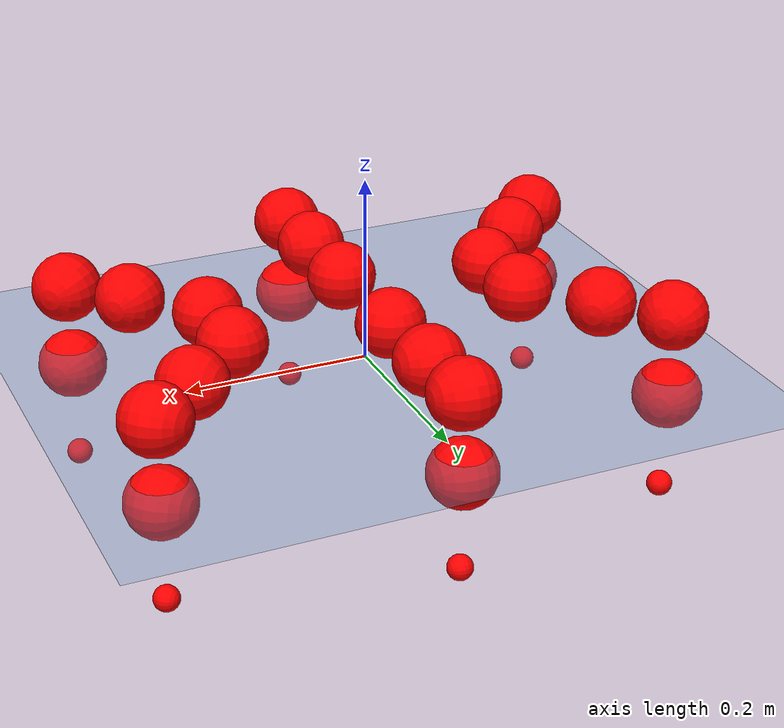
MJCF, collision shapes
<mujoco model="Golem">
  <compiler angle="radian" assetdir="assets" balanceinertia="true" inertiafromgeom="false"/>

  <option timestep="0.005" density="1.2" viscosity="2e-05"/>

  <size nkey="1"/>

  <visual>
    <quality shadowsize="8192"/>
    <map shadowclip="0.5"/>
  </visual>

  <default>
    <default class="/">
      <joint armature="0.01" damping="0.01" frictionloss="0.01"/>
      <geom contype="0" conaffinity="0" group="1" solref="-1000 -80"/>
      <site size="0.01 0.005 0.005" group="5"/>
      <general forcelimited="true" biastype="affine" gainprm="25" biasprm="0 -25 -0.5"/>
      <default class="visual">
        <geom type="mesh" group="2"/>
      </default>
      <default class="collision">
        <geom group="3"/>
      </default>
      <default class="foot">
        <geom size="0.01 0 0" condim="6" group="4" priority="1" solimp="0.015 1 0.01"/>
      </default>
      <default class="reward_collision_sphere">
        <geom group="5" rgba="1 0 0 1"/>
      </default>
    </default>
  </default>

  <asset>
    <texture type="skybox" colorspace="auto" name="//unnamed_texture_0" builtin="gradient" rgb1="0.95 0.95 0.95" rgb2="0.95 0.95 0.95" width="100" height="600"/>
    <texture type="2d" colorspace="auto" name="texplane" builtin="checker" rgb1="0.345 0.575 0.748" rgb2="0.345 0.575 0.748" markrgb="1 1 1" width="512" height="512"/>
    <material name="MatPlane" class="/" texture="texplane" texuniform="true" texrepeat="2 2" specular="0.9"/>
    <mesh name="body" class="/" file="body.stl" scale="0.001 0.001 0.001"/>
    <mesh name="coxa" class="/" file="coxa.stl" scale="0.001 0.001 0.001"/>
    <mesh name="femur" class="/" file="femur.stl" scale="0.001 0.001 0.001"/>
    <mesh name="tibia" class="/" file="tibia.stl" scale="0.001 0.001 0.001"/>
    <mesh name="tarsus" class="/" file="tarsus.stl" scale="0.001 0.001 0.001"/>
  </asset>

  <worldbody>
    <geom name="floor" class="/" size="100 100 0.125" type="plane" group="0" material="MatPlane"/>
    <light name="toplight_shadow" class="/" pos="0 0 5" dir="0.0990148 0.0990148 -0.990148" type="directional" ambient="0.04 0.04 0.04" diffuse="0.55 0.55 0.55" specular="0.12 0.12 0.12"/>
    <light name="toplight_fill" class="/" pos="0 0 5" dir="0.0990148 0.0990148 -0.990148" type="directional" castshadow="false" ambient="0.04 0.04 0.04" diffuse="0.3 0.3 0.3" specular="0.08 0.08 0.08"/>
    <body name="trunk" pos="0.000118154 -0.000826713 -0.000718265" quat="1 -5.1213e-06 4.07425e-06 5.82272e-06">
      <inertial pos="0.000842681 4.7087e-05 -0.00360235" quat="1 -0.000219505 -7.78088e-05 -5.20126e-05" mass="2.87887" diaginertia="0.0111849 0.00167304 0.0125648"/>
      <joint name="//unnamed_joint_0" type="free"/>
      <geom name="//unnamed_geom_1" class="/" pos="0 0 0.0670537" quat="1 0 0 0" type="mesh" rgba="0.9 0.9 0.9 1" mesh="body"/>
      <site name="imu" class="/" pos="0.131808 -0.00165256 0.106457" size="0.00923141"/>
      <camera name="track" class="/" pos="0 -1.40136 0" quat="0.707107 0.707107 0 0" mode="trackcom"/>
      <camera name="ego_camera" class="/" pos="0.132734 0 0.104771" quat="-0.5 -0.5 0.5 0.5"/>
      <body name="coxa_RR" pos="-0.181159 -0.0581255 0.0671286" quat="0.382662 -7.57073e-05 -0.000121982 -0.923888">
        <inertial pos="-0.000198873 -0.00033459 0.00103022" quat="0.999991 -0.0023336 0.00344601 -0.000135382" mass="0.157479" diaginertia="0.0112731 0.00171533 0.0128097"/>
        <joint name="coxa_joint_RR" class="/" pos="0 0 0" axis="0.00276815 -0.00200405 -0.999994" range="-3.13841 3.13567" armature="0.00943708" damping="0.00942781" frictionloss="0.00925554"/>
        <geom name="//unnamed_geom_2" class="/" type="mesh" rgba="0.2 0.2 0.2 1" mesh="coxa"/>
        <geom name="//unnamed_geom_3" class="reward_collision_sphere" size="0.0369256" pos="-0.0306309 0 0"/>
        <body name="femur_RR" pos="0.0610014 0.000627338 0.000288051" quat="0.499936 -0.50009 0.499962 0.500011">
          <inertial pos="0.00057216 3.37259e-05 -0.000236918" quat="0.999999 0.000460598 0.00134537 0.000287983" mass="0.157373" diaginertia="0.0111068 0.00169668 0.0127305"/>
          <joint name="femur_joint_RR" class="/" pos="0 0 0" axis="0.000761526 -0.00112017 -0.999999" range="-3.13198 3.15554" armature="0.00902543" damping="0.00160566" frictionloss="0.00898515"/>
          <geom name="//unnamed_geom_4" class="/" type="mesh" rgba="0.9 0.9 0.9 1" mesh="femur"/>
          <geom name="//unnamed_geom_5" class="reward_collision_sphere" size="0.0369256"/>
          <body name="tibia_RR" pos="0.00157988 -0.0764447 0.000895177" quat="3.46077e-05 1 -6.74092e-06 6.39e-06">
            <inertial pos="0.000444623 -0.000342437 0.000115328" quat="1 0.000123699 -0.000503756 5.30356e-05" mass="0.157595" diaginertia="0.0112419 0.0016977 0.0128935"/>
            <joint name="tibia_joint_RR" class="/" pos="0 0 0" axis="0.00195923 0.00205176 0.999996" range="-3.1471 3.12144" armature="0.00910452" damping="0" frictionloss="0.00924242"/>
            <geom name="//unnamed_geom_6" class="/" type="mesh" rgba="0.2 0.2 0.2 1" mesh="tibia"/>
            <geom name="//unnamed_geom_7" class="reward_collision_sphere" size="0.0369256"/>
            <body name="tarsus_RR" pos="0.0896433 0.000135097 -0.000685797" quat="1 3.67632e-06 -4.0203e-07 -1.34197e-05">
              <inertial pos="0.0622635 0.000695125 -0.00057133" quat="0.498252 0.500163 0.500095 0.501485" mass="0.158252" diaginertia="0.0111844 0.00168335 0.0126999"/>
              <joint name="tarsus_joint_RR" class="/" pos="0 0 0" axis="-0.00130345 0.00386672 0.999992" stiffness="0.00198933" range="-3.12936 3.12039" armature="0.00903909" damping="0.040404" frictionloss="0.00948238"/>
              <geom name="//unnamed_geom_8" class="/" type="mesh" rgba="0.9 0.9 0.9 1" mesh="tarsus"/>
              <geom name="foot_1" class="foot" size="0.00922931" pos="0.114355 0 0" quat="0 -0.707107 0 0.707107"/>
              <geom name="//unnamed_geom_10" class="reward_collision_sphere" size="0.0369256"/>
              <geom name="//unnamed_geom_11" class="reward_collision_sphere" size="0.0138471" pos="0.109761 0 0"/>
              <site name="foot_1" class="foot" pos="0.114355 0 0" quat="0 -0.707107 0 0.707107" size="0.00923141"/>
            </body>
          </body>
        </body>
      </body>
      <body name="coxa_RM" pos="2.33988e-05 -0.0929765 0.0678744" quat="0.707075 7.34529e-06 -0.000388241 -0.707139">
        <inertial pos="-0.000601211 0.000157389 0.000845683" quat="0.999998 0.00181458 0.000604646 0.0010536" mass="0.157814" diaginertia="0.0111769 0.0016812 0.0124709"/>
        <joint name="coxa_joint_RM" class="/" pos="0 0 0" axis="-0.000867865 -0.00225882 -0.999997" range="-3.13712 3.14416" armature="0.00921795" damping="0.0116459" frictionloss="0.0088906"/>
        <geom name="//unnamed_geom_12" class="/" type="mesh" rgba="0.2 0.2 0.2 1" mesh="coxa"/>
        <geom name="//unnamed_geom_13" class="reward_collision_sphere" size="0.0369256" pos="-0.0306309 0 0"/>
        <body name="femur_RM" pos="0.05984 -0.00113653 3.28009e-05" quat="0.500002 -0.499999 0.5 0.499999">
          <inertial pos="0.000465274 6.34761e-05 0.000121595" quat="1 0.000121346 0.000294828 0.000102599" mass="0.15829" diaginertia="0.0111552 0.00170969 0.0126873"/>
          <joint name="femur_joint_RM" class="/" pos="0 0 0" axis="-0.000920749 -0.00427827 -0.99999" range="-3.14493 3.13789" armature="0.00945776" damping="0.00809431" frictionloss="0.00921405"/>
          <geom name="//unnamed_geom_14" class="/" type="mesh" rgba="0.9 0.9 0.9 1" mesh="femur"/>
          <geom name="//unnamed_geom_15" class="reward_collision_sphere" size="0.0369256"/>
          <body name="tibia_RM" pos="-3.24282e-05 -0.0744053 -0.00035978" quat="2.57008e-07 1 2.93102e-07 -1.39612e-06">
            <inertial pos="-0.000789474 -0.000379466 -5.93407e-05" quat="0.999999 -0.000386059 -0.000847972 -0.000990225" mass="0.158063" diaginertia="0.0110693 0.00169783 0.0125876"/>
            <joint name="tibia_joint_RM" class="/" pos="0 0 0" axis="0.00201292 0.000631412 0.999998" range="-3.13428 3.15307" armature="0.0092564" damping="0.0107144" frictionloss="0.00945334"/>
            <geom name="//unnamed_geom_16" class="/" type="mesh" rgba="0.2 0.2 0.2 1" mesh="tibia"/>
            <geom name="//unnamed_geom_17" class="reward_collision_sphere" size="0.0369256"/>
            <body name="tarsus_RM" pos="0.0891855 -0.000285732 -0.000288062" quat="1 -3.31249e-05 -2.21237e-06 -6.74711e-05">
              <inertial pos="0.0618957 0.000622532 -0.000476347" quat="0.500153 0.5007 0.499031 0.500115" mass="0.157914" diaginertia="0.0111559 0.00170829 0.0127465"/>
              <joint name="tarsus_joint_RM" class="/" pos="0 0 0" axis="-0.00013304 0.000203221 1" range="-3.15645 3.13037" armature="0.00907342" damping="0.00765194" frictionloss="0.00919938"/>
              <geom name="//unnamed_geom_18" class="/" type="mesh" rgba="0.9 0.9 0.9 1" mesh="tarsus"/>
              <geom name="foot_2" class="foot" size="0.00942246" pos="0.114355 0 0" quat="0 -0.707107 0 0.707107"/>
              <geom name="//unnamed_geom_20" class="reward_collision_sphere" size="0.0369256"/>
              <geom name="//unnamed_geom_21" class="reward_collision_sphere" size="0.0138471" pos="0.109761 0 0"/>
              <site name="foot_2" class="foot" pos="0.114355 0 0" quat="0 -0.707107 0 0.707107" size="0.00923141"/>
            </body>
          </body>
        </body>
      </body>
      <body name="coxa_RF" pos="0.182285 -0.0583021 0.0675309" quat="0.923905 -4.15187e-05 -6.1355e-05 -0.382623">
        <inertial pos="-6.25857e-05 -0.000884847 -0.00019222" quat="1 0.000268001 -2.9061e-05 0.00014379" mass="0.157574" diaginertia="0.01112 0.00169243 0.0126914"/>
        <joint name="coxa_joint_RF" class="/" pos="0 0 0" axis="-0.000168407 0.000582464 -1" range="-3.13963 3.14765" armature="0.00899935" damping="0.013518" frictionloss="0.00909597"/>
        <geom name="//unnamed_geom_22" class="/" type="mesh" rgba="0.2 0.2 0.2 1" mesh="coxa"/>
        <geom name="//unnamed_geom_23" class="reward_collision_sphere" size="0.0369256" pos="-0.0306309 0 0"/>
        <body name="femur_RF" pos="0.0601298 -0.000721006 -0.000417945" quat="0.500013 -0.499875 0.50005 0.500063">
          <inertial pos="-7.8017e-05 0.000620219 -0.000131874" quat="0.999999 -0.000534486 0.00134839 0.000599413" mass="0.158247" diaginertia="0.0110963 0.00171768 0.0126875"/>
          <joint name="femur_joint_RF" class="/" pos="0 0 0" axis="0.000615104 0.000620871 -1" range="-3.14362 3.14318" armature="0.00945791" damping="0.00626893" frictionloss="0.00890519"/>
          <geom name="//unnamed_geom_24" class="/" type="mesh" rgba="0.9 0.9 0.9 1" mesh="femur"/>
          <geom name="//unnamed_geom_25" class="reward_collision_sphere" size="0.0369256"/>
          <body name="tibia_RF" pos="0.00026986 -0.0751836 0.000222983" quat="-4.2513e-06 1 -3.36612e-05 3.02379e-05">
            <inertial pos="-0.000397666 0.000458895 -0.000466037" quat="1 0.000178891 -0.000300601 3.23294e-05" mass="0.158049" diaginertia="0.011277 0.00168049 0.0126551"/>
            <joint name="tibia_joint_RF" class="/" pos="0 0 0" axis="0.000142888 5.64496e-05 1" range="-3.14794 3.13211" armature="0.00923011" damping="0.00853034" frictionloss="0.00924653"/>
            <geom name="//unnamed_geom_26" class="/" type="mesh" rgba="0.2 0.2 0.2 1" mesh="tibia"/>
            <geom name="//unnamed_geom_27" class="reward_collision_sphere" size="0.0369256"/>
            <body name="tarsus_RF" pos="0.0904515 -0.000242254 -0.000153665" quat="1 3.2752e-05 -5.96143e-05 3.23993e-05">
              <inertial pos="0.0604105 0.000596625 8.46096e-05" quat="0.499779 0.500165 0.500219 0.499836" mass="0.158014" diaginertia="0.0111597 0.0016814 0.0125104"/>
              <joint name="tarsus_joint_RF" class="/" pos="0 0 0" axis="-0.000513178 -0.000402884 1" stiffness="0.000968997" range="-3.13649 3.12878" armature="0.00883489" damping="0" frictionloss="0.00952333"/>
              <geom name="//unnamed_geom_28" class="/" type="mesh" rgba="0.9 0.9 0.9 1" mesh="tarsus"/>
              <geom name="foot_3" class="foot" size="0.00896499" pos="0.114355 0 0" quat="0 -0.707107 0 0.707107"/>
              <geom name="//unnamed_geom_30" class="reward_collision_sphere" size="0.0369256"/>
              <geom name="//unnamed_geom_31" class="reward_collision_sphere" size="0.0138471" pos="0.109761 0 0"/>
              <site name="foot_3" class="foot" pos="0.114355 0 0" quat="0 -0.707107 0 0.707107" size="0.00923141"/>
            </body>
          </body>
        </body>
      </body>
      <body name="coxa_LR" pos="-0.181235 0.060474 0.0676898" quat="0.382722 9.18338e-05 -9.60383e-05 0.923863">
        <inertial pos="0.000227155 -0.000768541 -6.49303e-05" quat="0.999999 -0.00130259 0.000147653 -0.000594615" mass="0.157406" diaginertia="0.0109933 0.00168585 0.0125313"/>
        <joint name="coxa_joint_LR" class="/" pos="0 0 0" axis="0.00251555 0.000682958 -0.999997" range="-3.14699 3.15174" armature="0.00960557" damping="0.00543179" frictionloss="0.00952687"/>
        <geom name="//unnamed_geom_32" class="/" type="mesh" rgba="0.2 0.2 0.2 1" mesh="coxa"/>
        <geom name="//unnamed_geom_33" class="reward_collision_sphere" size="0.0369256" pos="-0.0306309 0 0"/>
        <body name="femur_LR" pos="0.0605453 -0.00164304 -0.000153183" quat="0.499985 -0.49991 0.499982 0.500124">
          <inertial pos="1.69607e-05 -0.000429598 0.000205457" quat="0.999993 0.00106286 0.00168454 0.00322051" mass="0.15728" diaginertia="0.0111281 0.00167955 0.0126993"/>
          <joint name="femur_joint_LR" class="/" pos="0 0 0" axis="-0.00184185 -0.00216996 0.999996" range="-3.13266 3.14437" armature="0.00947791" damping="0.00299802" frictionloss="0.00902091"/>
          <geom name="//unnamed_geom_34" class="/" type="mesh" rgba="0.9 0.9 0.9 1" mesh="femur"/>
          <geom name="//unnamed_geom_35" class="reward_collision_sphere" size="0.0369256"/>
          <body name="tibia_LR" pos="0.00083875 -0.0767119 -0.00223494" quat="4.56973e-05 1 -1.01754e-05 1.80611e-05">
            <inertial pos="-0.000201456 3.52964e-05 -8.11896e-06" quat="0.999999 4.12191e-05 -0.000638163 -0.00111387" mass="0.156523" diaginertia="0.010983 0.00166838 0.012543"/>
            <joint name="tibia_joint_LR" class="/" pos="0 0 0" axis="0.00457096 0.000538396 -0.999989" range="-3.12585 3.1518" armature="0.0093539" damping="0.00386626" frictionloss="0.00909253"/>
            <geom name="//unnamed_geom_36" class="/" type="mesh" rgba="0.2 0.2 0.2 1" mesh="tibia"/>
            <geom name="//unnamed_geom_37" class="reward_collision_sphere" size="0.0369256"/>
            <body name="tarsus_LR" pos="0.090418 0.000658228 0.00116393" quat="1 4.50114e-05 5.19375e-05 3.32773e-05">
              <inertial pos="0.0620754 0.000342509 -0.000336087" quat="0.5002 0.500346 0.499768 0.499686" mass="0.159484" diaginertia="0.0111091 0.00171067 0.0127074"/>
              <joint name="tarsus_joint_LR" class="/" pos="0 0 0" axis="-0.00354187 -0.000930745 -0.999993" range="-3.1284 3.14813" armature="0.00912648" damping="0.004645" frictionloss="0.00926535"/>
              <geom name="//unnamed_geom_38" class="/" type="mesh" rgba="0.9 0.9 0.9 1" mesh="tarsus"/>
              <geom name="foot_4" class="foot" size="0.00873774" pos="0.114355 0 0" quat="0.707107 0 -0.707107 0"/>
              <geom name="//unnamed_geom_40" class="reward_collision_sphere" size="0.0369256"/>
              <geom name="//unnamed_geom_41" class="reward_collision_sphere" size="0.0138471" pos="0.109761 0 0"/>
              <site name="foot_4" class="foot" pos="0.114355 0 0" quat="0.707107 0 -0.707107 0" size="0.00923141"/>
            </body>
          </body>
        </body>
      </body>
      <body name="coxa_LM" pos="-0.00180521 0.0917967 0.0670111" quat="0.707054 8.86357e-05 4.08615e-05 0.70716">
        <inertial pos="0.000639948 -4.25503e-06 0.00012594" quat="0.999991 0.00358111 0.00144889 0.00196744" mass="0.157272" diaginertia="0.0111925 0.00168762 0.0126131"/>
        <joint name="coxa_joint_LM" class="/" pos="0 0 0" axis="0.000125368 8.58213e-05 -1" range="-3.14878 3.13287" armature="0.00899642" damping="0.0101784" frictionloss="0.00892844"/>
        <geom name="//unnamed_geom_42" class="/" type="mesh" rgba="0.2 0.2 0.2 1" mesh="coxa"/>
        <geom name="//unnamed_geom_43" class="reward_collision_sphere" size="0.0369256" pos="-0.0306309 0 0"/>
        <body name="femur_LM" pos="0.0576567 0.00171027 -0.00110431" quat="0.50027 -0.499856 0.500281 0.499594">
          <inertial pos="-0.000644988 0.000433059 0.0005538" quat="1 1.10581e-05 0.000108221 -0.00044181" mass="0.15815" diaginertia="0.0110598 0.00168268 0.0126814"/>
          <joint name="femur_joint_LM" class="/" pos="0 0 0" axis="-0.000904418 0.000855909 0.999999" range="-3.13859 3.15184" armature="0.00889233" damping="0.000257256" frictionloss="0.00916698"/>
          <geom name="//unnamed_geom_44" class="/" type="mesh" rgba="0.9 0.9 0.9 1" mesh="femur"/>
          <geom name="//unnamed_geom_45" class="reward_collision_sphere" size="0.0369256"/>
          <body name="tibia_LM" pos="0.000683173 -0.0731378 0.00139068" quat="-3.44461e-05 1 -0.000312467 2.297e-05">
            <inertial pos="0.000281081 -0.00112359 5.80892e-05" quat="0.999991 0.000304087 -0.00183031 -0.00391889" mass="0.157255" diaginertia="0.0111117 0.00168283 0.0126438"/>
            <joint name="tibia_joint_LM" class="/" pos="0 0 0" axis="0.00110563 -0.000153146 -0.999999" range="-3.13928 3.14504" armature="0.00915248" damping="0" frictionloss="0.00955881"/>
            <geom name="//unnamed_geom_46" class="/" type="mesh" rgba="0.2 0.2 0.2 1" mesh="tibia"/>
            <geom name="//unnamed_geom_47" class="reward_collision_sphere" size="0.0369256"/>
            <body name="tarsus_LM" pos="0.0885722 -0.000262335 -0.00180238" quat="1 -0.000192854 -4.67589e-05 -0.000223713">
              <inertial pos="0.0625509 -0.000381148 0.000531314" quat="0.5 0.5 0.5 0.5" mass="0.154684" diaginertia="0.011049 0.00166853 0.0124229"/>
              <joint name="tarsus_joint_LM" class="/" pos="0 0 0" axis="-0.000650855 -0.000355658 -1" range="-3.12901 3.1472" armature="0.00913023" damping="0" frictionloss="0.00914625"/>
              <geom name="//unnamed_geom_48" class="/" type="mesh" rgba="0.9 0.9 0.9 1" mesh="tarsus"/>
              <geom name="foot_5" class="foot" size="0.00923208" pos="0.114355 0 0" quat="0.707107 0 -0.707107 0"/>
              <geom name="//unnamed_geom_50" class="reward_collision_sphere" size="0.0369256"/>
              <geom name="//unnamed_geom_51" class="reward_collision_sphere" size="0.0138471" pos="0.109761 0 0"/>
              <site name="foot_5" class="foot" pos="0.114355 0 0" quat="0.707107 0 -0.707107 0" size="0.00923141"/>
            </body>
          </body>
        </body>
      </body>
      <body name="coxa_LF" pos="0.18224 0.0587512 0.0669838" quat="0.923899 0.000188908 -5.48222e-05 0.382637">
        <inertial pos="0.000211071 -0.000240553 0.0004228" quat="0.999991 0.0014669 0.00154251 0.00368172" mass="0.158464" diaginertia="0.0110292 0.00168546 0.0125735"/>
        <joint name="coxa_joint_LF" class="/" pos="0 0 0" axis="-0.00290399 0.00064502 -0.999996" range="-3.1297 3.14727" armature="0.00911758" damping="0.00158395" frictionloss="0.00963003"/>
        <geom name="//unnamed_geom_52" class="/" type="mesh" rgba="0.2 0.2 0.2 1" mesh="coxa"/>
        <geom name="//unnamed_geom_53" class="reward_collision_sphere" size="0.0369256" pos="-0.0306309 0 0"/>
        <body name="femur_LF" pos="0.0603244 0.000364054 -0.000517272" quat="0.499977 -0.499995 0.500047 0.499981">
          <inertial pos="0.000357271 7.58618e-05 -0.000342701" quat="0.999998 -0.0010279 0.00186359 -0.000386937" mass="0.155885" diaginertia="0.0110505 0.0016772 0.0127017"/>
          <joint name="femur_joint_LF" class="/" pos="0 0 0" axis="-0.000593081 -0.00153106 0.999999" range="-3.15673 3.14732" armature="0.00901007" damping="0" frictionloss="0.00901777"/>
          <geom name="//unnamed_geom_54" class="/" type="mesh" rgba="0.9 0.9 0.9 1" mesh="femur"/>
          <geom name="//unnamed_geom_55" class="reward_collision_sphere" size="0.0369256"/>
          <body name="tibia_LF" pos="0.00090419 -0.0759821 -0.000538458" quat="1.56017e-05 1 4.86849e-05 -2.8222e-06">
            <inertial pos="0.000107932 -0.000727778 -0.000321799" quat="0.999998 0.00168386 0.000694724 -0.000579546" mass="0.158375" diaginertia="0.0110519 0.00168331 0.0126447"/>
            <joint name="tibia_joint_LF" class="/" pos="0 0 0" axis="-0.00111238 -0.00255938 -0.999996" stiffness="0.000157319" range="-3.13896 3.13306" armature="0.00966813" damping="0.00417308" frictionloss="0.00893955"/>
            <geom name="//unnamed_geom_56" class="/" type="mesh" rgba="0.2 0.2 0.2 1" mesh="tibia"/>
            <geom name="//unnamed_geom_57" class="reward_collision_sphere" size="0.0369256"/>
            <body name="tarsus_LF" pos="0.0897301 8.21877e-05 -0.000376189" quat="1 6.05287e-06 5.61101e-06 8.7505e-06">
              <inertial pos="0.0624836 -2.27197e-05 0.000668714" quat="0.498348 0.497615 0.501878 0.502142" mass="0.156677" diaginertia="0.0111084 0.00168331 0.0125891"/>
              <joint name="tarsus_joint_LF" class="/" pos="0 0 0" axis="0.0046887 -0.00184275 -0.999987" stiffness="0.0293359" range="-3.12338 3.12626" armature="0.00924027" damping="0.0246825" frictionloss="0.0093707"/>
              <geom name="//unnamed_geom_58" class="/" type="mesh" rgba="0.9 0.9 0.9 1" mesh="tarsus"/>
              <geom name="foot_6" class="foot" size="0.00903072" pos="0.114355 0 0" quat="0.707107 0 -0.707107 0"/>
              <geom name="//unnamed_geom_60" class="reward_collision_sphere" size="0.0369256"/>
              <geom name="//unnamed_geom_61" class="reward_collision_sphere" size="0.0138471" pos="0.109761 0 0"/>
              <site name="foot_6" class="foot" pos="0.114355 0 0" quat="0.707107 0 -0.707107 0" size="0.00923141"/>
            </body>
          </body>
        </body>
      </body>
    </body>
  </worldbody>

  <contact>
    <pair class="/" geom1="floor" geom2="foot_1" name="//unnamed_contact_0"/>
    <pair class="/" geom1="floor" geom2="foot_2" name="//unnamed_contact_1"/>
    <pair class="/" geom1="floor" geom2="foot_3" name="//unnamed_contact_2"/>
    <pair class="/" geom1="floor" geom2="foot_4" name="//unnamed_contact_3"/>
    <pair class="/" geom1="floor" geom2="foot_5" name="//unnamed_contact_4"/>
    <pair class="/" geom1="floor" geom2="foot_6" name="//unnamed_contact_5"/>
  </contact>

  <actuator>
    <general name="coxa_joint_RR" class="/" joint="coxa_joint_RR" forcerange="-6.69443 6.69443" gainprm="22.2619" biasprm="0 -22.2619 -0.474077"/>
    <general name="femur_joint_RR" class="/" joint="femur_joint_RR" forcerange="-6.73367 6.73367" gainprm="22.2619" biasprm="0 -22.2619 -0.474077"/>
    <general name="tibia_joint_RR" class="/" joint="tibia_joint_RR" forcerange="-6.72041 6.72041" gainprm="22.2619" biasprm="0 -22.2619 -0.474077"/>
    <general name="tarsus_joint_RR" class="/" joint="tarsus_joint_RR" forcerange="-6.55201 6.55201" gainprm="22.2619" biasprm="0 -22.2619 -0.474077"/>
    <general name="coxa_joint_RM" class="/" joint="coxa_joint_RM" forcerange="-6.66858 6.66858" gainprm="22.2619" biasprm="0 -22.2619 -0.474077"/>
    <general name="femur_joint_RM" class="/" joint="femur_joint_RM" forcerange="-6.63025 6.63025" gainprm="22.2619" biasprm="0 -22.2619 -0.474077"/>
    <general name="tibia_joint_RM" class="/" joint="tibia_joint_RM" forcerange="-6.95697 6.95697" gainprm="22.2619" biasprm="0 -22.2619 -0.474077"/>
    <general name="tarsus_joint_RM" class="/" joint="tarsus_joint_RM" forcerange="-6.67956 6.67956" gainprm="22.2619" biasprm="0 -22.2619 -0.474077"/>
    <general name="coxa_joint_RF" class="/" joint="coxa_joint_RF" forcerange="-6.74174 6.74174" gainprm="22.2619" biasprm="0 -22.2619 -0.474077"/>
    <general name="femur_joint_RF" class="/" joint="femur_joint_RF" forcerange="-6.93178 6.93178" gainprm="22.2619" biasprm="0 -22.2619 -0.474077"/>
    <general name="tibia_joint_RF" class="/" joint="tibia_joint_RF" forcerange="-6.62105 6.62105" gainprm="22.2619" biasprm="0 -22.2619 -0.474077"/>
    <general name="tarsus_joint_RF" class="/" joint="tarsus_joint_RF" forcerange="-6.57009 6.57009" gainprm="22.2619" biasprm="0 -22.2619 -0.474077"/>
    <general name="coxa_joint_LR" class="/" joint="coxa_joint_LR" forcerange="-6.72599 6.72599" gainprm="22.2619" biasprm="0 -22.2619 -0.474077"/>
    <general name="femur_joint_LR" class="/" joint="femur_joint_LR" forcerange="-6.70991 6.70991" gainprm="22.2619" biasprm="0 -22.2619 -0.474077"/>
    <general name="tibia_joint_LR" class="/" joint="tibia_joint_LR" forcerange="-6.77345 6.77345" gainprm="22.2619" biasprm="0 -22.2619 -0.474077"/>
    <general name="tarsus_joint_LR" class="/" joint="tarsus_joint_LR" forcerange="-6.75601 6.75601" gainprm="22.2619" biasprm="0 -22.2619 -0.474077"/>
    <general name="coxa_joint_LM" class="/" joint="coxa_joint_LM" forcerange="-6.59858 6.59858" gainprm="22.2619" biasprm="0 -22.2619 -0.474077"/>
    <general name="femur_joint_LM" class="/" joint="femur_joint_LM" forcerange="-6.72711 6.72711" gainprm="22.2619" biasprm="0 -22.2619 -0.474077"/>
    <general name="tibia_joint_LM" class="/" joint="tibia_joint_LM" forcerange="-6.80985 6.80985" gainprm="22.2619" biasprm="0 -22.2619 -0.474077"/>
    <general name="tarsus_joint_LM" class="/" joint="tarsus_joint_LM" forcerange="-6.69946 6.69946" gainprm="22.2619" biasprm="0 -22.2619 -0.474077"/>
    <general name="coxa_joint_LF" class="/" joint="coxa_joint_LF" forcerange="-6.59118 6.59118" gainprm="22.2619" biasprm="0 -22.2619 -0.474077"/>
    <general name="femur_joint_LF" class="/" joint="femur_joint_LF" forcerange="-6.7896 6.7896" gainprm="22.2619" biasprm="0 -22.2619 -0.474077"/>
    <general name="tibia_joint_LF" class="/" joint="tibia_joint_LF" forcerange="-6.86059 6.86059" gainprm="22.2619" biasprm="0 -22.2619 -0.474077"/>
    <general name="tarsus_joint_LF" class="/" joint="tarsus_joint_LF" forcerange="-6.93189 6.93189" gainprm="22.2619" biasprm="0 -22.2619 -0.474077"/>
  </actuator>

  <sensor>
    <gyro site="imu" name="imu_angular_velocity"/>
    <velocimeter site="imu" name="imu_linear_velocity"/>
    <framelinvel objtype="site" objname="foot_1" name="foot_1_global_linear_velocity"/>
    <framelinvel objtype="site" objname="foot_2" name="foot_2_global_linear_velocity"/>
    <framelinvel objtype="site" objname="foot_3" name="foot_3_global_linear_velocity"/>
    <framelinvel objtype="site" objname="foot_4" name="foot_4_global_linear_velocity"/>
    <framelinvel objtype="site" objname="foot_5" name="foot_5_global_linear_velocity"/>
    <framelinvel objtype="site" objname="foot_6" name="foot_6_global_linear_velocity"/>
  </sensor>

  <keyframe>
    <key name="home" qpos="0 0 0.1457 1 0 0 0 0 0 0 0 0 0 0 0 0 0 0 0 0 0 0 0 0 0 0 0 0 0 0 0"/>
  </keyframe>
</mujoco>
